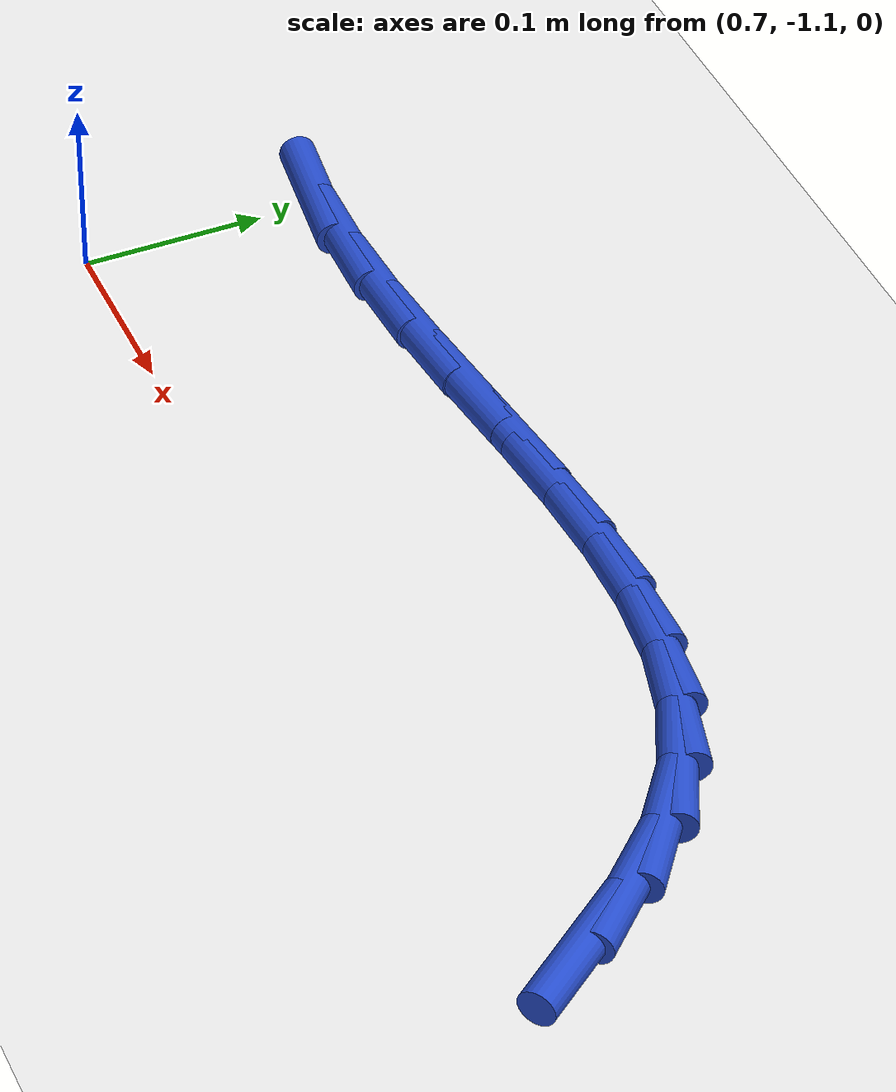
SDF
<sdf version="1.6">
 <world name="default">
  <model name="ground_plane">
   <static>1</static>
   <link name="link">
    <collision name="collision">
     <geometry><plane><normal>0 0 1</normal><size>100 100</size></plane></geometry>
     <surface><friction><ode><mu>100</mu><mu2>50</mu2></ode></friction></surface>
    </collision>
    <visual name="visual">
     <cast_shadows>0</cast_shadows>
     <geometry><plane><normal>0 0 1</normal><size>100 100</size></plane></geometry>
     <material>
      <script><uri>file://media/materials/scripts/gazebo.material</uri><name>Gazebo/WhiteGlow</name></script>
     </material>
    </visual>
   </link>
  </model>
  <model name="line">
   <link name="link_136">
    <pose>1.2609862169456927 -1.068727743958172 0.01 0 1.57 -0.9331959247885872</pose>
    <collision name="collision">
     <geometry><cylinder><radius>0.01</radius><length>0.08</length></cylinder></geometry>
    </collision>
    <visual name="visual">
     <material>
      <script><name>Gazebo/Blue</name><uri>file://media/materials/scripts/gazebo.material</uri></script>
     </material>
     <geometry><cylinder><radius>0.01</radius><length>0.08</length></cylinder></geometry>
    </visual>
   </link>
   <link name="link_137">
    <pose>1.234294014240386 -1.0326971578056634 0.01 0 1.57 -0.816634246812842</pose>
    <collision name="collision">
     <geometry><cylinder><radius>0.01</radius><length>0.08</length></cylinder></geometry>
    </collision>
    <visual name="visual">
     <material>
      <script><name>Gazebo/Blue</name><uri>file://media/materials/scripts/gazebo.material</uri></script>
     </material>
     <geometry><cylinder><radius>0.01</radius><length>0.08</length></cylinder></geometry>
    </visual>
   </link>
   <link name="link_138">
    <pose>1.2053242027422624 -1.0018585579543 0.01 0 1.57 -0.6421515729593282</pose>
    <collision name="collision">
     <geometry><cylinder><radius>0.01</radius><length>0.08</length></cylinder></geometry>
    </collision>
    <visual name="visual">
     <material>
      <script><name>Gazebo/Blue</name><uri>file://media/materials/scripts/gazebo.material</uri></script>
     </material>
     <geometry><cylinder><radius>0.01</radius><length>0.08</length></cylinder></geometry>
    </visual>
   </link>
   <link name="link_139">
    <pose>1.1733974659036055 -0.9779807595999477 0.01 0 1.57 -0.43985759375288236</pose>
    <collision name="collision">
     <geometry><cylinder><radius>0.01</radius><length>0.08</length></cylinder></geometry>
    </collision>
    <visual name="visual">
     <material>
      <script><name>Gazebo/Blue</name><uri>file://media/materials/scripts/gazebo.material</uri></script>
     </material>
     <geometry><cylinder><radius>0.01</radius><length>0.08</length></cylinder></geometry>
    </visual>
   </link>
   <link name="link_140">
    <pose>1.1383487036603948 -0.9614865817975208 0.01 0 1.57 -0.2616492396768908</pose>
    <collision name="collision">
     <geometry><cylinder><radius>0.01</radius><length>0.08</length></cylinder></geometry>
    </collision>
    <visual name="visual">
     <material>
      <script><name>Gazebo/Blue</name><uri>file://media/materials/scripts/gazebo.material</uri></script>
     </material>
     <geometry><cylinder><radius>0.01</radius><length>0.08</length></cylinder></geometry>
    </visual>
   </link>
   <link name="link_141">
    <pose>1.1005597721064413 -0.9513671491676674 0.01 0 1.57 -0.11963685072052836</pose>
    <collision name="collision">
     <geometry><cylinder><radius>0.01</radius><length>0.08</length></cylinder></geometry>
    </collision>
    <visual name="visual">
     <material>
      <script><name>Gazebo/Blue</name><uri>file://media/materials/scripts/gazebo.material</uri></script>
     </material>
     <geometry><cylinder><radius>0.01</radius><length>0.08</length></cylinder></geometry>
    </visual>
   </link>
   <link name="link_142">
    <pose>1.0604390358970663 -0.9465441983930201 0.01 0 1.57 -0.014382266333800471</pose>
    <collision name="collision">
     <geometry><cylinder><radius>0.01</radius><length>0.08</length></cylinder></geometry>
    </collision>
    <visual name="visual">
     <material>
      <script><name>Gazebo/Blue</name><uri>file://media/materials/scripts/gazebo.material</uri></script>
     </material>
     <geometry><cylinder><radius>0.01</radius><length>0.08</length></cylinder></geometry>
    </visual>
   </link>
   <link name="link_143">
    <pose>1.0183948596875954 -0.9459394661562112 0.01 0 1.57 0.05813612630076295</pose>
    <collision name="collision">
     <geometry><cylinder><radius>0.01</radius><length>0.08</length></cylinder></geometry>
    </collision>
    <visual name="visual">
     <material>
      <script><name>Gazebo/Blue</name><uri>file://media/materials/scripts/gazebo.material</uri></script>
     </material>
     <geometry><cylinder><radius>0.01</radius><length>0.08</length></cylinder></geometry>
    </visual>
   </link>
   <link name="link_144">
    <pose>0.9748356081333497 -0.9484746891398734 0.01 0 1.57 0.10255655082244841</pose>
    <collision name="collision">
     <geometry><cylinder><radius>0.01</radius><length>0.08</length></cylinder></geometry>
    </collision>
    <visual name="visual">
     <material>
      <script><name>Gazebo/Blue</name><uri>file://media/materials/scripts/gazebo.material</uri></script>
     </material>
     <geometry><cylinder><radius>0.01</radius><length>0.08</length></cylinder></geometry>
    </visual>
   </link>
   <link name="link_145">
    <pose>0.9301696458896527 -0.9530716040266393 0.01 0 1.57 0.12239686771129225</pose>
    <collision name="collision">
     <geometry><cylinder><radius>0.01</radius><length>0.08</length></cylinder></geometry>
    </collision>
    <visual name="visual">
     <material>
      <script><name>Gazebo/Blue</name><uri>file://media/materials/scripts/gazebo.material</uri></script>
     </material>
     <geometry><cylinder><radius>0.01</radius><length>0.08</length></cylinder></geometry>
    </visual>
   </link>
   <link name="link_146">
    <pose>0.8848053376118268 -0.958651947499141 0.01 0 1.57 0.11957994300866559</pose>
    <collision name="collision">
     <geometry><cylinder><radius>0.01</radius><length>0.08</length></cylinder></geometry>
    </collision>
    <visual name="visual">
     <material>
      <script><name>Gazebo/Blue</name><uri>file://media/materials/scripts/gazebo.material</uri></script>
     </material>
     <geometry><cylinder><radius>0.01</radius><length>0.08</length></cylinder></geometry>
    </visual>
   </link>
   <link name="link_147">
    <pose>0.8391510479551956 -0.9641374562400118 0.01 0 1.57 0.09442191114593515</pose>
    <collision name="collision">
     <geometry><cylinder><radius>0.01</radius><length>0.08</length></cylinder></geometry>
    </collision>
    <visual name="visual">
     <material>
      <script><name>Gazebo/Blue</name><uri>file://media/materials/scripts/gazebo.material</uri></script>
     </material>
     <geometry><cylinder><radius>0.01</radius><length>0.08</length></cylinder></geometry>
    </visual>
   </link>
   <link name="link_148">
    <pose>0.7936151415750806 -0.968449866931884 0.01 0 1.57 0.04575981001544751</pose>
    <collision name="collision">
     <geometry><cylinder><radius>0.01</radius><length>0.08</length></cylinder></geometry>
    </collision>
    <visual name="visual">
     <material>
      <script><name>Gazebo/Blue</name><uri>file://media/materials/scripts/gazebo.material</uri></script>
     </material>
     <geometry><cylinder><radius>0.01</radius><length>0.08</length></cylinder></geometry>
    </visual>
   </link>
   <link name="link_149">
    <pose>0.7486059831268067 -0.9705109162573895 0.01 0 1.57 -0.02877487623544546</pose>
    <collision name="collision">
     <geometry><cylinder><radius>0.01</radius><length>0.08</length></cylinder></geometry>
    </collision>
    <visual name="visual">
     <material>
      <script><name>Gazebo/Blue</name><uri>file://media/materials/scripts/gazebo.material</uri></script>
     </material>
     <geometry><cylinder><radius>0.01</radius><length>0.08</length></cylinder></geometry>
    </visual>
   </link>
   <link name="link_150">
    <pose>0.7045319372656956 -0.9692423408991612 0.01 0 1.57 -0.12795065792887153</pose>
    <collision name="collision">
     <geometry><cylinder><radius>0.01</radius><length>0.08</length></cylinder></geometry>
    </collision>
    <visual name="visual">
     <material>
      <script><name>Gazebo/Blue</name><uri>file://media/materials/scripts/gazebo.material</uri></script>
     </material>
     <geometry><cylinder><radius>0.01</radius><length>0.08</length></cylinder></geometry>
    </visual>
   </link>
  </model>
 </world>
</sdf>
